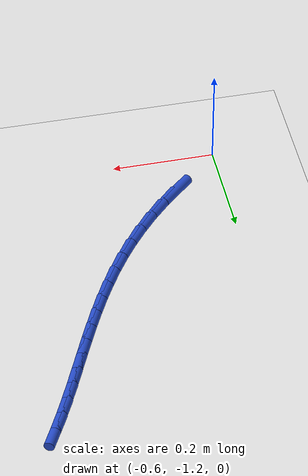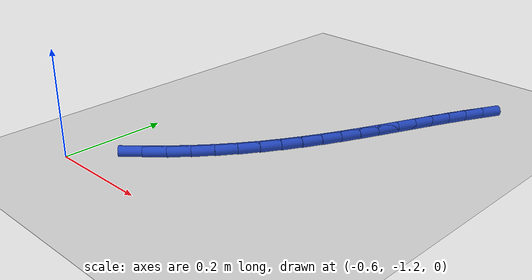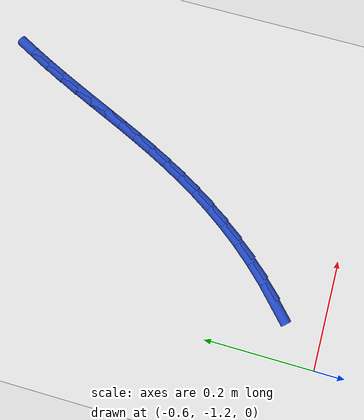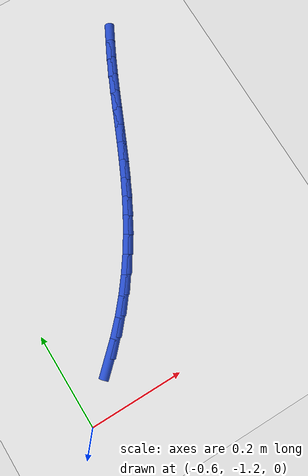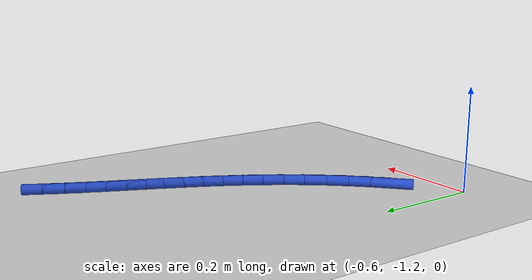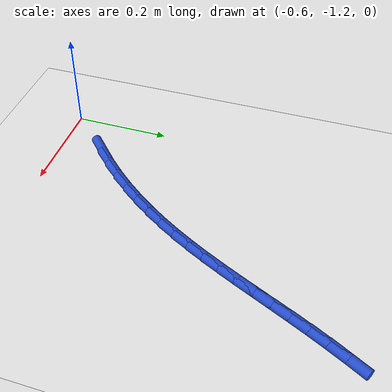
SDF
<sdf version="1.6">
 <world name="default">
  <model name="ground_plane">
   <static>1</static>
   <link name="link">
    <collision name="collision">
     <geometry><plane><normal>0 0 1</normal><size>100 100</size></plane></geometry>
     <surface><friction><ode><mu>100</mu><mu2>50</mu2></ode></friction></surface>
    </collision>
    <visual name="visual">
     <cast_shadows>0</cast_shadows>
     <geometry><plane><normal>0 0 1</normal><size>100 100</size></plane></geometry>
     <material>
      <script><uri>file://media/materials/scripts/gazebo.material</uri><name>Gazebo/WhiteGlow</name></script>
     </material>
    </visual>
   </link>
  </model>
  <model name="line">
   <link name="link_178">
    <pose>-0.5052249898134714 -1.1054201674734427 0.01 0 1.57 0.7493346486234758</pose>
    <collision name="collision">
     <geometry><cylinder><radius>0.01</radius><length>0.08</length></cylinder></geometry>
    </collision>
    <visual name="visual">
     <material>
      <script><name>Gazebo/Blue</name><uri>file://media/materials/scripts/gazebo.material</uri></script>
     </material>
     <geometry><cylinder><radius>0.01</radius><length>0.08</length></cylinder></geometry>
    </visual>
   </link>
   <link name="link_179">
    <pose>-0.474058985711207 -1.0764247372287232 0.01 0 1.57 0.8053578039534128</pose>
    <collision name="collision">
     <geometry><cylinder><radius>0.01</radius><length>0.08</length></cylinder></geometry>
    </collision>
    <visual name="visual">
     <material>
      <script><name>Gazebo/Blue</name><uri>file://media/materials/scripts/gazebo.material</uri></script>
     </material>
     <geometry><cylinder><radius>0.01</radius><length>0.08</length></cylinder></geometry>
    </visual>
   </link>
   <link name="link_180">
    <pose>-0.4445138202202566 -1.0456759666073754 0.01 0 1.57 0.8568510034290704</pose>
    <collision name="collision">
     <geometry><cylinder><radius>0.01</radius><length>0.08</length></cylinder></geometry>
    </collision>
    <visual name="visual">
     <material>
      <script><name>Gazebo/Blue</name><uri>file://media/materials/scripts/gazebo.material</uri></script>
     </material>
     <geometry><cylinder><radius>0.01</radius><length>0.08</length></cylinder></geometry>
    </visual>
   </link>
   <link name="link_181">
    <pose>-0.41684259054609674 -1.0137382447089236 0.01 0 1.57 0.905563985260087</pose>
    <collision name="collision">
     <geometry><cylinder><radius>0.01</radius><length>0.08</length></cylinder></geometry>
    </collision>
    <visual name="visual">
     <material>
      <script><name>Gazebo/Blue</name><uri>file://media/materials/scripts/gazebo.material</uri></script>
     </material>
     <geometry><cylinder><radius>0.01</radius><length>0.08</length></cylinder></geometry>
    </visual>
   </link>
   <link name="link_182">
    <pose>-0.3912888535318504 -0.9811659277237548 0.01 0 1.57 0.9519960352379492</pose>
    <collision name="collision">
     <geometry><cylinder><radius>0.01</radius><length>0.08</length></cylinder></geometry>
    </collision>
    <visual name="visual">
     <material>
      <script><name>Gazebo/Blue</name><uri>file://media/materials/scripts/gazebo.material</uri></script>
     </material>
     <geometry><cylinder><radius>0.01</radius><length>0.08</length></cylinder></geometry>
    </visual>
   </link>
   <link name="link_183">
    <pose>-0.3678605259869338 -0.948265566260069 0.01 0 1.57 0.9949864187928643</pose>
    <collision name="collision">
     <geometry><cylinder><radius>0.01</radius><length>0.08</length></cylinder></geometry>
    </collision>
    <visual name="visual">
     <material>
      <script><name>Gazebo/Blue</name><uri>file://media/materials/scripts/gazebo.material</uri></script>
     </material>
     <geometry><cylinder><radius>0.01</radius><length>0.08</length></cylinder></geometry>
    </visual>
   </link>
   <link name="link_184">
    <pose>-0.34632050999858305 -0.915086046661979 0.01 0 1.57 1.0337465921719329</pose>
    <collision name="collision">
     <geometry><cylinder><radius>0.01</radius><length>0.08</length></cylinder></geometry>
    </collision>
    <visual name="visual">
     <material>
      <script><name>Gazebo/Blue</name><uri>file://media/materials/scripts/gazebo.material</uri></script>
     </material>
     <geometry><cylinder><radius>0.01</radius><length>0.08</length></cylinder></geometry>
    </visual>
   </link>
   <link name="link_185">
    <pose>-0.32642029145936574 -0.8816642496872739 0.01 0 1.57 1.067634018778627</pose>
    <collision name="collision">
     <geometry><cylinder><radius>0.01</radius><length>0.08</length></cylinder></geometry>
    </collision>
    <visual name="visual">
     <material>
      <script><name>Gazebo/Blue</name><uri>file://media/materials/scripts/gazebo.material</uri></script>
     </material>
     <geometry><cylinder><radius>0.01</radius><length>0.08</length></cylinder></geometry>
    </visual>
   </link>
   <link name="link_186">
    <pose>-0.30791135626185007 -0.8480370560937428 0.01 0 1.57 1.0961245752185897</pose>
    <collision name="collision">
     <geometry><cylinder><radius>0.01</radius><length>0.08</length></cylinder></geometry>
    </collision>
    <visual name="visual">
     <material>
      <script><name>Gazebo/Blue</name><uri>file://media/materials/scripts/gazebo.material</uri></script>
     </material>
     <geometry><cylinder><radius>0.01</radius><length>0.08</length></cylinder></geometry>
    </visual>
   </link>
   <link name="link_187">
    <pose>-0.2905451902986043 -0.8142413466391752 0.01 0 1.57 1.1188114469029706</pose>
    <collision name="collision">
     <geometry><cylinder><radius>0.01</radius><length>0.08</length></cylinder></geometry>
    </collision>
    <visual name="visual">
     <material>
      <script><name>Gazebo/Blue</name><uri>file://media/materials/scripts/gazebo.material</uri></script>
     </material>
     <geometry><cylinder><radius>0.01</radius><length>0.08</length></cylinder></geometry>
    </visual>
   </link>
   <link name="link_188">
    <pose>-0.27407327946219684 -0.7803140020813606 0.01 0 1.57 1.1353962265235085</pose>
    <collision name="collision">
     <geometry><cylinder><radius>0.01</radius><length>0.08</length></cylinder></geometry>
    </collision>
    <visual name="visual">
     <material>
      <script><name>Gazebo/Blue</name><uri>file://media/materials/scripts/gazebo.material</uri></script>
     </material>
     <geometry><cylinder><radius>0.01</radius><length>0.08</length></cylinder></geometry>
    </visual>
   </link>
   <link name="link_189">
    <pose>-0.2582471096451955 -0.7462919031780874 0.01 0 1.57 1.1456764734438811</pose>
    <collision name="collision">
     <geometry><cylinder><radius>0.01</radius><length>0.08</length></cylinder></geometry>
    </collision>
    <visual name="visual">
     <material>
      <script><name>Gazebo/Blue</name><uri>file://media/materials/scripts/gazebo.material</uri></script>
     </material>
     <geometry><cylinder><radius>0.01</radius><length>0.08</length></cylinder></geometry>
    </visual>
   </link>
   <link name="link_190">
    <pose>-0.24281816674016937 -0.7122119306871466 0.01 0 1.57 1.149533637923597</pose>
    <collision name="collision">
     <geometry><cylinder><radius>0.01</radius><length>0.08</length></cylinder></geometry>
    </collision>
    <visual name="visual">
     <material>
      <script><name>Gazebo/Blue</name><uri>file://media/materials/scripts/gazebo.material</uri></script>
     </material>
     <geometry><cylinder><radius>0.01</radius><length>0.08</length></cylinder></geometry>
    </visual>
   </link>
   <link name="link_191">
    <pose>-0.22753793663968633 -0.6781109653663272 0.01 0 1.57 1.146924343085917</pose>
    <collision name="collision">
     <geometry><cylinder><radius>0.01</radius><length>0.08</length></cylinder></geometry>
    </collision>
    <visual name="visual">
     <material>
      <script><name>Gazebo/Blue</name><uri>file://media/materials/scripts/gazebo.material</uri></script>
     </material>
     <geometry><cylinder><radius>0.01</radius><length>0.08</length></cylinder></geometry>
    </visual>
   </link>
   <link name="link_192">
    <pose>-0.21215790523631461 -0.6440258879734185 0.01 0 1.57 1.1378768869559497</pose>
    <collision name="collision">
     <geometry><cylinder><radius>0.01</radius><length>0.08</length></cylinder></geometry>
    </collision>
    <visual name="visual">
     <material>
      <script><name>Gazebo/Blue</name><uri>file://media/materials/scripts/gazebo.material</uri></script>
     </material>
     <geometry><cylinder><radius>0.01</radius><length>0.08</length></cylinder></geometry>
    </visual>
   </link>
   <link name="link_193">
    <pose>-0.19642955842262255 -0.6099935792662096 0.01 0 1.57 1.1224936598876467</pose>
    <collision name="collision">
     <geometry><cylinder><radius>0.01</radius><length>0.08</length></cylinder></geometry>
    </collision>
    <visual name="visual">
     <material>
      <script><name>Gazebo/Blue</name><uri>file://media/materials/scripts/gazebo.material</uri></script>
     </material>
     <geometry><cylinder><radius>0.01</radius><length>0.08</length></cylinder></geometry>
    </visual>
   </link>
   <link name="link_194">
    <pose>-0.18010438209117835 -0.57605092000249 0.01 0 1.57 1.1016542425282074</pose>
    <collision name="collision">
     <geometry><cylinder><radius>0.01</radius><length>0.08</length></cylinder></geometry>
    </collision>
    <visual name="visual">
     <material>
      <script><name>Gazebo/Blue</name><uri>file://media/materials/scripts/gazebo.material</uri></script>
     </material>
     <geometry><cylinder><radius>0.01</radius><length>0.08</length></cylinder></geometry>
    </visual>
   </link>
   <link name="link_195">
    <pose>-0.16296046296830435 -0.5422289512261868 0.01 0 1.57 1.084949697263447</pose>
    <collision name="collision">
     <geometry><cylinder><radius>0.01</radius><length>0.08</length></cylinder></geometry>
    </collision>
    <visual name="visual">
     <material>
      <script><name>Gazebo/Blue</name><uri>file://media/materials/scripts/gazebo.material</uri></script>
     </material>
     <geometry><cylinder><radius>0.01</radius><length>0.08</length></cylinder></geometry>
    </visual>
   </link>
  </model>
 </world>
</sdf>
